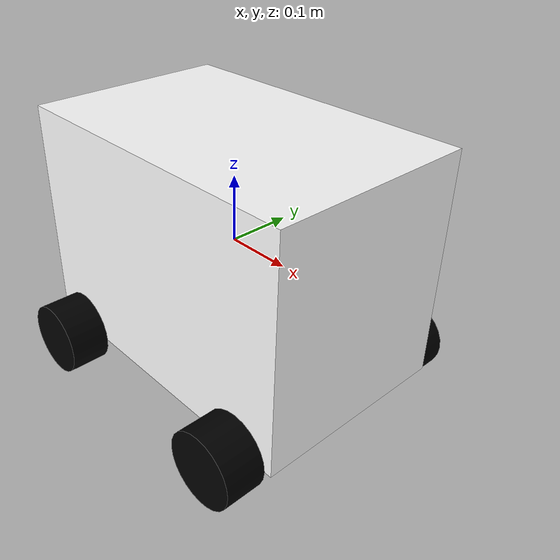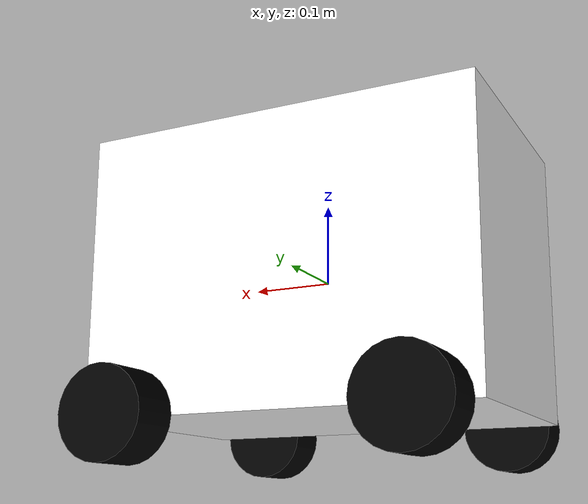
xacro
<?xml version="1.0"?>
<robot xmlns:xacro="http://www.ros.org/wiki/xacro" >

    <xacro:include filename="inertial_macros.xacro"/>

    <!-- Define materials -->
    <material name="grey">
        <color rgba="0.5 0.5 0.5 1"/>
    </material>

    <material name="white">
        <color rgba="1 1 1 1"/>
    </material>

    <material name="red">
        <color rgba="1 0 0 1"/>
    </material>

    <material name="black">
        <color rgba="0 0 0 1"/>
    </material>

    <!-- Define parameters -->
    <xacro:property name="body_length" value="0.485"/>
    <xacro:property name="body_width" value="0.31"/>
    <xacro:property name="body_height" value="0.345"/>
    <xacro:property name="wheel_radius" value="0.055" />
    <xacro:property name="wheel_length" value="0.06" />
    <xacro:property name="material_density" value="1180" />
    <xacro:property name="body_mass" value="8" />
    <xacro:property name="wheel_mass" value="1" />

    <!-- BASE LINK -->

    <link name="base_link">

    </link>

    <!--BODY LINK -->

    <joint name="body_joint" type="fixed">
        <parent link="base_link"/>
        <child link="body"/>
        <origin xyz="0 0 0"/>
    </joint>

    <link name="body">
        <visual>
            <origin xyz="0 0 0"/>
            <geometry>
                <box size="${body_length} ${body_width} ${body_height}"/>
            </geometry>
            <material name="white"/>
        </visual>
        <collision>
            <origin xyz="0 0 0"/>
            <geometry>
                <box size="${body_length} ${body_width} ${body_height}"/>
            </geometry>
        </collision>
        <xacro:inertial_box mass="${body_mass}" x="0.485" y="0.31" z="0.345">
            <origin xyz="0 0 0" rpy="0 0 0"/>
        </xacro:inertial_box>
    </link>

    <gazebo reference="body">
            <material>Gazebo/White</material>
            <mul1>0.01</mul1>
            <mul2>0.01</mul2>
        </gazebo>

    <!-- LEFT FRONT WHEEL LINK-->

    <joint name="left_front_wheel_joint" type="continuous">
        <parent link="base_link"/>
        <child link="left_front_wheel"/>
        <origin xyz="${body_length/2-1.2*wheel_radius} ${-body_width/2-wheel_length/2} ${-body_height/2}" rpy="${-pi/2} 0 0"/>
        <axis xyz="0 0 1"/>
    </joint>

    <link name="left_front_wheel">
        <visual>
        <geometry>
            <cylinder radius="${wheel_radius}" length="${wheel_length}"/>
        </geometry>
        <material name="black"/>
        </visual>
        <collision>
            <geometry>
                <cylinder radius="${wheel_radius}" length="${wheel_length}"/>
        </geometry>
        </collision>
        <xacro:inertial_cylinder mass="${wheel_mass}" length="${wheel_length}" radius="${wheel_radius}">
            <origin xyz="0 0 0" rpy="0 0 0"/>
        </xacro:inertial_cylinder>
    </link>
    <gazebo reference="left_front_wheel">
            <material>Gazebo/Black</material>
            <mul1>0.01</mul1>
            <mul2>0.01</mul2>
        </gazebo>

    <!-- RIGHT FRONT WHEEL LINK-->

    <joint name="right_front_wheel_joint" type="continuous">
        <parent link="base_link"/>
        <child link="right_front_wheel"/>
        <origin xyz="${body_length/2-1.2*wheel_radius} ${body_width/2+wheel_length/2} ${-body_height/2}" rpy="${pi/2} 0 0"/>
        <axis xyz="0 0 -1"/>
    </joint>

    <link name="right_front_wheel">
        <visual>
        <geometry>
            <cylinder radius="${wheel_radius}" length="${wheel_length}"/>
        </geometry>
        <material name="black"/>
        </visual>
        <collision>
            <geometry>
                <cylinder radius="${wheel_radius}" length="${wheel_length}"/>
        </geometry>
        </collision>
        <xacro:inertial_cylinder mass="${wheel_mass}" length="${wheel_length}" radius="${wheel_radius}">
            <origin xyz="0 0 0" rpy="0 0 0"/>
        </xacro:inertial_cylinder>
    </link>
    <gazebo reference="right_front_wheel">
            <material>Gazebo/Black</material>
            <mul1>0.01</mul1>
            <mul2>0.01</mul2>
        </gazebo>

    <!-- LEFT REAR WHEEL LINK-->

    <joint name="left_rear_wheel_joint" type="continuous">
        <parent link="base_link"/>
        <child link="left_rear_wheel"/>
        <origin xyz="${-body_length/2+1.2*wheel_radius} ${-body_width/2-wheel_length/2} ${-body_height/2}" rpy="${-pi/2} 0 0"/>
        <axis xyz="0 0 1"/>
    </joint>

    <link name="left_rear_wheel">
        <visual>
        <geometry>
            <cylinder radius="${wheel_radius}" length="${wheel_length}"/>
        </geometry>
        <material name="black"/>
        </visual>
        <collision>
            <geometry>
                <cylinder radius="${wheel_radius}" length="${wheel_length}"/>
        </geometry>
        </collision>
        <xacro:inertial_cylinder mass="${wheel_mass}" length="${wheel_length}" radius="${wheel_radius}">
            <origin xyz="0 0 0" rpy="0 0 0"/>
        </xacro:inertial_cylinder>
    </link>
    <gazebo reference="left_rear_wheel">
            <material>Gazebo/Black</material>
            <mul1>0.01</mul1>
            <mul2>0.01</mul2>
        </gazebo>

    <!-- RIGHT REAR WHEEL LINK-->

    <joint name="right_rear_wheel_joint" type="continuous">
        <parent link="base_link"/>
        <child link="right_rear_wheel"/>
        <origin xyz="${-body_length/2+1.2*wheel_radius} ${body_width/2+wheel_length/2} ${-body_height/2}" rpy="${-pi/2} 0 0"/>
        <axis xyz="0 0 1"/>
    </joint>

    <link name="right_rear_wheel">
        <visual>
        <geometry>
            <cylinder radius="${wheel_radius}" length="${wheel_length}"/>
        </geometry>
        <material name="black"/>
        </visual>
        <collision>
            <geometry>
                <cylinder radius="${wheel_radius}" length="${wheel_length}"/>
        </geometry>
        </collision>
        <xacro:inertial_cylinder mass="${wheel_mass}" length="${wheel_length}" radius="${wheel_radius}">
            <origin xyz="0 0 0" rpy="0 0 0"/>
        </xacro:inertial_cylinder>
    </link>
    <gazebo reference="right_rear_wheel">
            <material>Gazebo/Black</material>
            <mul1>0.01</mul1>
            <mul2>0.01</mul2>
        </gazebo>

</robot>
